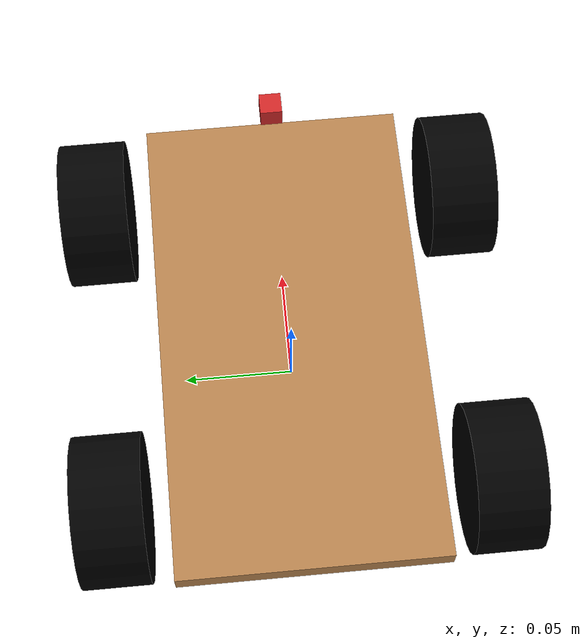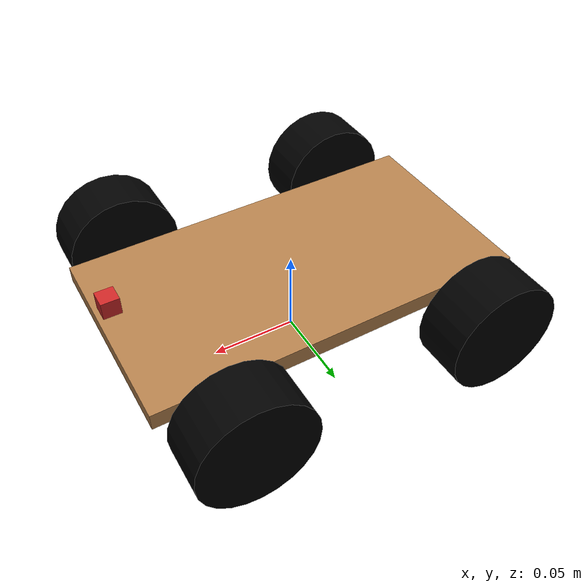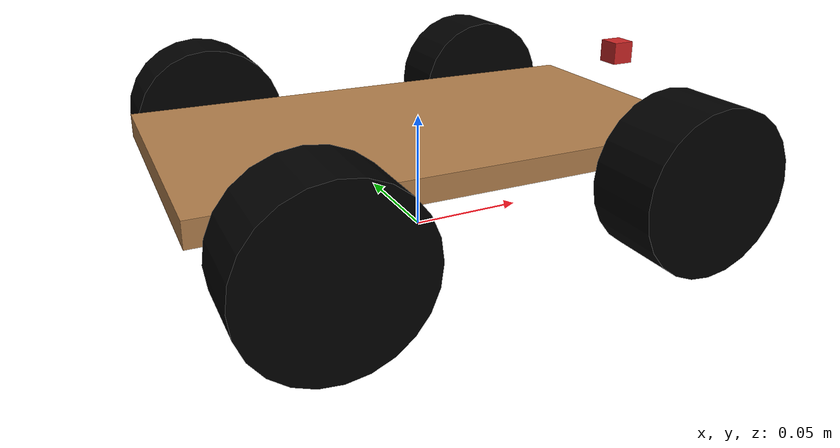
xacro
<?xml version="1.0"?>
<robot name="smartcar" xmlns:xacro="http://www.ros.org/wiki/xacro">

<!-- Include materials-->

<material name="Black">
   <color rgba="0.0 0.0 0.0 1.0"/>
</material>

<material name="White">
   <color rgba="1.0 1.0 1.0 1.0"/>
</material>

<!-- constants -->
<xacro:property name="deg_to_rad" value="0.017453"/>
<xacro:property name="PI" value="3.14"/>
<xacro:property name="degrees_45" value="0.785398163"/>
<xacro:property name="degrees_90" value="1.57079633"/>

<!-- chassis property -->
<xacro:property name="chassis_length" value="0.218"/>
<xacro:property name="chassis_width" value="0.118"/>
<xacro:property name="chassis_height" value="0.01"/>
<xacro:property name="chassis_mass" value="1.58"/>

<!-- wheel property -->
<xacro:property name="wheel_radius" value="0.033"/>
<xacro:property name="wheel_width" value="0.03"/>
<xacro:property name="wheel_height" value="0.11"/>
<xacro:property name="wheel_mass" value="0.2"/>
<xacro:property name="wheelbase" value="0.145"/>

<!-- //////////////////     innertia      //////////////////////////-->
<xacro:macro name="cylinder_inertia" params ="m r h">
  <inertial>
    <mass value="${m}"/>
    <inertia ixx="${m*(3*r*r+h*h)/12}"  ixy="0.0" ixz="0.0"
            iyy="${m*(3*r*r+h*h)/12}"  iyz= "0.0"
            izz="${m*r*r/2}"/>
   </inertial>
</xacro:macro>

<!-- Inertia of a solid cuboid. Width is measured along the x axis, depth
       along the y axis, and height along the z axis. -->
<xacro:macro name="solid_cuboid_inertial"
               params="width depth height mass *origin">
  <inertial>
    <xacro:insert_block name="origin"/>
    <mass value="${mass}"/>
    <inertia ixx="${mass * (depth * depth + height * height) / 12}"
               ixy="0" ixz="0"
               iyy="${mass * (width * width + height * height) / 12}"
               iyz="0"
               izz="${mass * (width * width + depth * depth) / 12}"/>
  </inertial>
</xacro:macro>

<xacro:macro name="thick_walled_tube_inertial"
               params="inner_rad outer_rad height mass">
  <inertial>
    <mass value="${mass}"/>
    <inertia ixx="${(1 / 12) * mass * (3 * (inner_rad * inner_rad +
                    outer_rad * outer_rad) + height * height)}"
               ixy="0" ixz="0"
               iyy="${(1 / 12) * mass * (3 * (inner_rad * inner_rad +
                    outer_rad * outer_rad) + height * height)}"
               iyz="0"
               izz="${mass * (inner_rad * inner_rad +
                    outer_rad * outer_rad) / 2}"/>
  </inertial>
</xacro:macro>

<!-- /////////////////////     Chassis     ///////////////////////-->

  <!-- Chassis -->
  <link name="chassis">
    <visual>
      <origin xyz="0 0 ${wheel_radius + 0.01}" rpy="0 0.01 0"/>
      <geometry>
        <box size="${chassis_length} ${chassis_width} ${chassis_height}"/>
      </geometry>
    </visual>

    <collision>
      <origin xyz="0 0 ${wheel_radius + 0.01}" rpy="0 0.01 0"/>
      <geometry>
        <box size="${chassis_length} ${chassis_width} ${chassis_height}"/>
      </geometry>
    </collision>
  </link>
  <gazebo reference="chassis">
    <material>Gazebo/WoodFloor</material>
    <turnGravityOff>false</turnGravityOff>
  </gazebo>

<!-- ///////////////////      Wheels      ///////////////////////   -->

<!-- Rear wheel -->
  <!-- rear wheel link -->
<xacro:macro name="rear_wheel" params= "prefix suffix X Y Z">
  <link name= "${prefix}_${suffix}_wheel">
    <visual>
      <origin rpy= "${degrees_90} 0 0" xyz= "0 0 0"/>
      <geometry><cylinder length="${wheel_width}" radius= "${wheel_radius}"/></geometry>
      <material name= "Black"/>
    </visual>
    <collision>
      <origin rpy= "${degrees_90} 0 0" xyz= "0 0 0"/>
      <geometry><cylinder length="${wheel_width}" radius= "${wheel_radius}"/></geometry>
    </collision>
    <xacro:cylinder_inertia m="${wheel_mass}" r="${wheel_radius}" h="${wheel_width}"/>
  </link>

  <gazebo reference ="${prefix}_${suffix}_wheel">
     <material>Gazebo/Black</material>
     <turnGravityOff>false</turnGravityOff>
  </gazebo>

  <!-- rear wheel joint -->
<joint name="${prefix}_${suffix}_wheel_joint" type="continuous">
  <parent link= "chassis"/>
  <child link= "${prefix}_${suffix}_wheel"/>
  <origin xyz= "${(wheelbase/2)*X-(wheelbase/2)*Y}
				        ${(chassis_width/2+wheel_width/2+0.01)*Z}
				        ${wheel_radius+0.005}"
		      rpy="0 0 0"/>
  <axis xyz="0 1 0"/>
  <limit effort= "10000" velocity="100"/>
  <dynamics damping="0.0" friction="0.0"/>
</joint>
  <!-- rear wheel transmission -->
 <transmission name="${prefix}_${suffix}_wheel_trans">
    <type>transmission_interface/SimpleTransmission</type>
    <actuator name="${prefix}_${suffix}_wheel_motor">
      <hardwareInterface>EffortJointInterface</hardwareInterface>
      <mechanicalReduction>1</mechanicalReduction>
    </actuator>
    <joint name="${prefix}_${suffix}_wheel_joint">
      <hardwareInterface>VelocityJointInterface</hardwareInterface>
    </joint>
 </transmission>
</xacro:macro>

<!-- Front wheel -->
<xacro:macro name="front_wheel" params= "prefix suffix X Y Z">
  <!-- steering link -->
 <link name= "${prefix}_steering_link">
    <visual>
      <origin rpy= "0 0 0" xyz= "0 0 0"/>
      <geometry><cylinder length="${wheel_width/5}" radius= "${wheel_radius/3}"/></geometry>
      <material name= "Black"/>
    </visual>
    <collision>
      <origin rpy= "0 0 0" xyz= "0 0 0"/>
      <geometry><cylinder length="${wheel_width/5}" radius= "${wheel_radius/3}"/></geometry>
    </collision>
    <xacro:cylinder_inertia m="${wheel_mass}" r="${wheel_radius}" h="${wheel_width}"/>

  </link>

  <gazebo reference ="${prefix}_steering_link">
     <material>Gazebo/Black</material>
     <turnGravityOff>false</turnGravityOff>
  </gazebo>

  <!-- steering joint -->
  <joint name="${prefix}_steering_joint" type="revolute">
    <parent link="chassis"/>
    <child link="${prefix}_steering_link"/>
    <origin xyz= "${(wheelbase/2)*X-(wheelbase/2)*Y}
			  	        ${(chassis_width/2+wheel_width/2+0.01)*Z}
				          ${wheel_radius*2+0.008}"
		        rpy="0 0 0"/>
    <axis xyz="0 0 1"/>
    <limit lower="${-degrees_45}" upper="${degrees_45}"
			 effort= "10000" velocity="100"/>
	  <dynamics damping="0.0" friction="0.0"/>
  </joint>

  <!-- steering joint transmission -->
  <transmission name="${prefix}_steering_trans">
    <type>transmission_interface/SimpleTransmission</type>
    <actuator name="${prefix}_steering_act">
      <hardwareInterface>hardware_interface/EffortJointInterface</hardwareInterface>
      <mechanicalReduction>1</mechanicalReduction>
    </actuator>
    <joint name="${prefix}_steering_joint">
      <hardwareInterface>hardware_interface/EffortJointInterface</hardwareInterface>
    </joint>
  </transmission>

  <!-- front wheel link -->
  <link name= "${prefix}_${suffix}_wheel">
    <visual>
      <origin rpy= "${degrees_90} 0 0" xyz= "0 0 0"/>
      <geometry><cylinder length="${wheel_width}" radius= "${wheel_radius}"/></geometry>
      <material name= "Black"/>
    </visual>
    <collision>
      <origin rpy= "${degrees_90} 0 0" xyz= "0 0 0"/>
      <geometry><cylinder length="${wheel_width}" radius= "${wheel_radius}"/></geometry>
    </collision>
    <xacro:thick_walled_tube_inertial inner_rad="${wheel_radius/5}" outer_rad="${wheel_radius}"
									height="${wheel_width}" mass="${wheel_mass}"/>
  </link>

  <gazebo reference ="${prefix}_${suffix}_wheel">
     <material>Gazebo/Black</material>
     <turnGravityOff>false</turnGravityOff>
  </gazebo>

  <!-- front wheel joint -->
  <joint name="${prefix}_${suffix}_wheel_joint" type="continuous">
    <parent link= "${prefix}_steering_link"/>
    <child link= "${prefix}_${suffix}_wheel"/>
    <origin xyz= "0 0 ${-wheel_radius-0.003}" rpy="0 0 0"/>
    <axis xyz="0 1 0"/>
    <limit effort= "10000" velocity="100"/>
    <dynamics damping="0.0" friction="0.0"/>
  </joint>

  <!-- steering joint transmission -->
  <transmission name="${prefix}_${suffix}_wheel_trans">
    <type>transmission_interface/SimpleTransmission</type>
    <actuator name="${prefix}_${suffix}_wheel_motor">
      <hardwareInterface>EffortJointInterface</hardwareInterface>
      <mechanicalReduction>1</mechanicalReduction>
    </actuator>
    <joint name="${prefix}_${suffix}_wheel_joint">
      <hardwareInterface>VelocityJointInterface</hardwareInterface>
    </joint>
  </transmission>
</xacro:macro>

<!-- Set all wheels ready. -->
<xacro:rear_wheel prefix="right" suffix="front" X="1" Y="0" Z="-1"/>
<xacro:rear_wheel prefix="right" suffix="back" X="0" Y="1" Z="-1"/>
<xacro:rear_wheel prefix="left" suffix="front" X="1" Y="0" Z="1"/>
<xacro:rear_wheel prefix="left" suffix="back" X="0" Y="1" Z="1"/>

<!-- Camera -->
<joint name="chassis_to_camera" type="fixed">
  <parent link="chassis"/>
  <child link="camera_link"/>
  <origin xyz="${(chassis_length / 4)}
                0
                ${chassis_height}"
          rpy="0 0 0"/>
</joint>
<link name="camera_link">
  <collision>
    <origin xyz="${(chassis_length / 4)-0.005}
                  0
                  ${-chassis_height / 4 +0.06}"
            rpy="0 0 0"/>
    <geometry>
      <box size="0.01 0.01 0.01"/>
    </geometry>
  </collision>

  <visual>
    <origin xyz="${(chassis_length / 4) -0.005}
                  0
                  ${-chassis_height / 4 +0.06}"
            rpy="0 0 0"/>
    <geometry>
      <box size="0.01 0.01 0.01"/>
    </geometry>
    <material name="red"/>
  </visual>

  <inertial>
    <mass value="1e-5" />
    <origin xyz="0 0 0" rpy="0 0 0"/>
    <inertia ixx="1e-6" ixy="0" ixz="0" iyy="1e-6" iyz="0" izz="1e-6" />
  </inertial>
</link>
<gazebo reference="camera_link">
  <material>Gazebo/Red</material>
</gazebo>

<!-- ros_control plugin-->

<gazebo>
  <plugin name="gazebo_ros_control" filename= "libgazebo_ros_control.so">
    <robotNamespace>/</robotNamespace>
    <legacyModeNS>true</legacyModeNS>
  </plugin>
</gazebo>

  <!-- camera Plugin -->
  <gazebo reference="camera_link">
    <sensor type="camera" name="camera1">
      <update_rate>10.0</update_rate>
      <camera name="head">
        <horizontal_fov>1.3962634</horizontal_fov>
        <image>
          <width>640</width>
          <height>480</height>
          <format>R8G8B8</format>
        </image>
        <clip>
          <near>0.02</near>
          <far>300</far>
        </clip>
        <noise>
          <type>gaussian</type>
          <!-- Noise is sampled independently per pixel on each frame.
               That pixel's noise value is added to each of its color
               channels, which at that point lie in the range [0,1]. -->
          <mean>0.0</mean>
          <stddev>0.007</stddev>
        </noise>
      </camera>
      <plugin name="camera_controller" filename="libgazebo_ros_camera.so">
        <alwaysOn>true</alwaysOn>
        <updateRate>0.0</updateRate>
        <cameraName>smartcar/camera1</cameraName>
        <imageTopicName>image_raw</imageTopicName>
        <cameraInfoTopicName>camera_info</cameraInfoTopicName>
        <frameName>camera_link</frameName>
        <hackBaseline>0.07</hackBaseline>
        <distortionK1>0.069086</distortionK1>
        <distortionK2>-0.089009</distortionK2>
        <distortionK3>0.007247</distortionK3>
        <distortionT1>0.009025</distortionT1>
        <distortionT2>0.0</distortionT2>
      </plugin>
    </sensor>
  </gazebo>

</robot>
